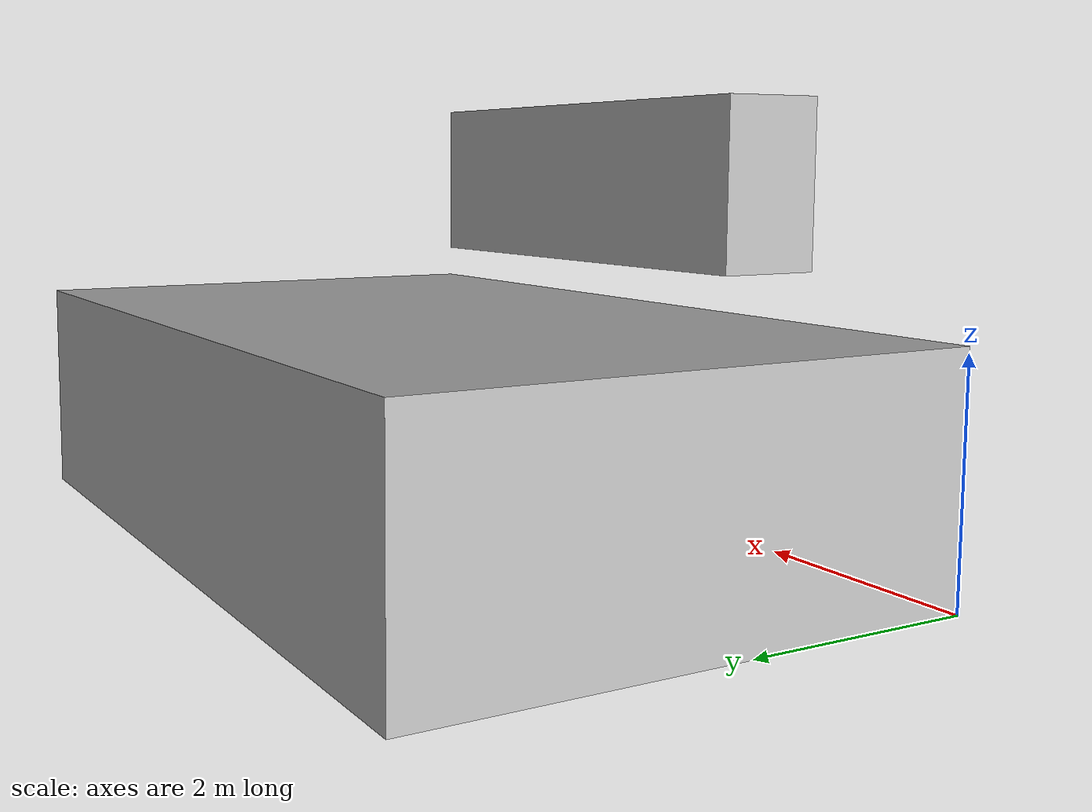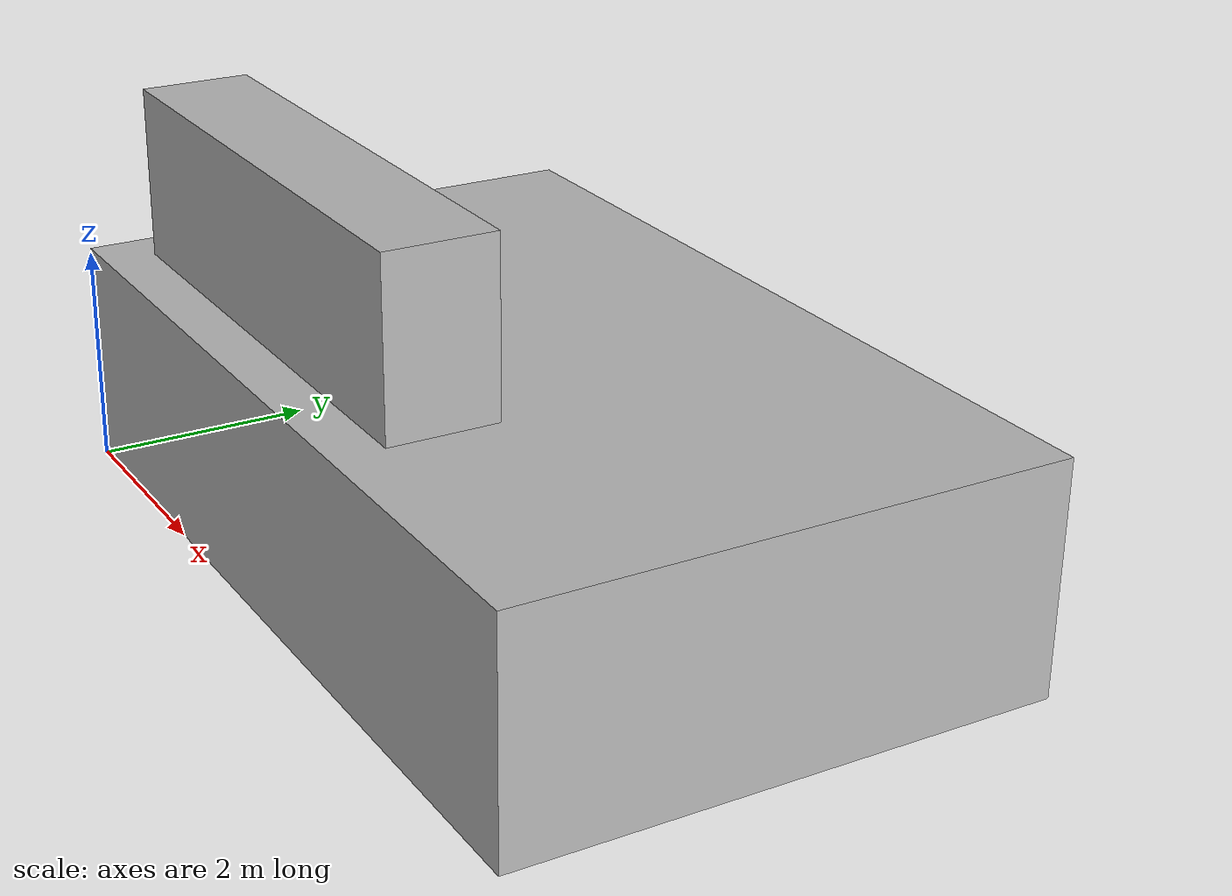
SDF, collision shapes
<?xml version="1.0" ?>
<sdf version="1.11">
  <model name="factory_assets">
    <static>true</static>

    <link name="building_massing">
      <pose>0 0 0 0 0 0</pose>
      <visual name="visual">
        <geometry>
          <mesh>
            <uri>model://factory_assets/meshes/massing_fab.dae</uri>
            <scale>0.0254 0.0254 0.0254</scale>
          </mesh>
        </geometry>
      </visual>
        <collision name="collision">
          <pose>3.937000 2.415536 1.028700 0 0 0</pose>
          <geometry>
            <box><size>7.874000 4.831072 2.057400</size></box>
          </geometry>
        </collision>
    </link>

    <link name="conveyor_system">
      <pose>0 0 0 0 0 0</pose>
      <visual name="visual">
        <geometry>
          <mesh>
            <uri>model://factory_assets/meshes/conveyor.dae</uri>
            <scale>0.0254 0.0254 0.0254</scale>
          </mesh>
        </geometry>
      </visual>
        <collision name="collision">
          <pose>6.072981 2.337311 1.028700 0 0 0</pose>
          <geometry>
            <box><size>1.747837 1.127674 2.032000</size></box>
          </geometry>
        </collision>
    </link>

    <link name="robot_arms">
      <pose>0 0 0 0 0 0</pose>
      <visual name="visual">
        <geometry>
          <mesh>
            <uri>model://factory_assets/meshes/arms.dae</uri>
            <scale>0.0254 0.0254 0.0254</scale>
          </mesh>
        </geometry>
      </visual>
        <collision name="collision">
          <pose>6.401314 2.697865 1.150797 0 0 0</pose>
          <geometry>
            <box><size>0.840000 1.672391 1.238532</size></box>
          </geometry>
        </collision>
    </link>

    <link name="vehicles_overlay">
      <pose>0 0 2.5 0 0 0</pose>
      <visual name="visual">
        <geometry>
          <mesh>
            <uri>model://factory_assets/meshes/vehicles_arms.dae</uri>
            <scale>0.0254 0.0254 0.0254</scale>
          </mesh>
        </geometry>
      </visual>
        <collision name="collision">
          <pose>3.873492 0.512019 0.725369 0 0 0</pose>
          <geometry>
            <box><size>4.537352 0.918508 1.450042</size></box>
          </geometry>
        </collision>
    </link>

  </model>
</sdf>
